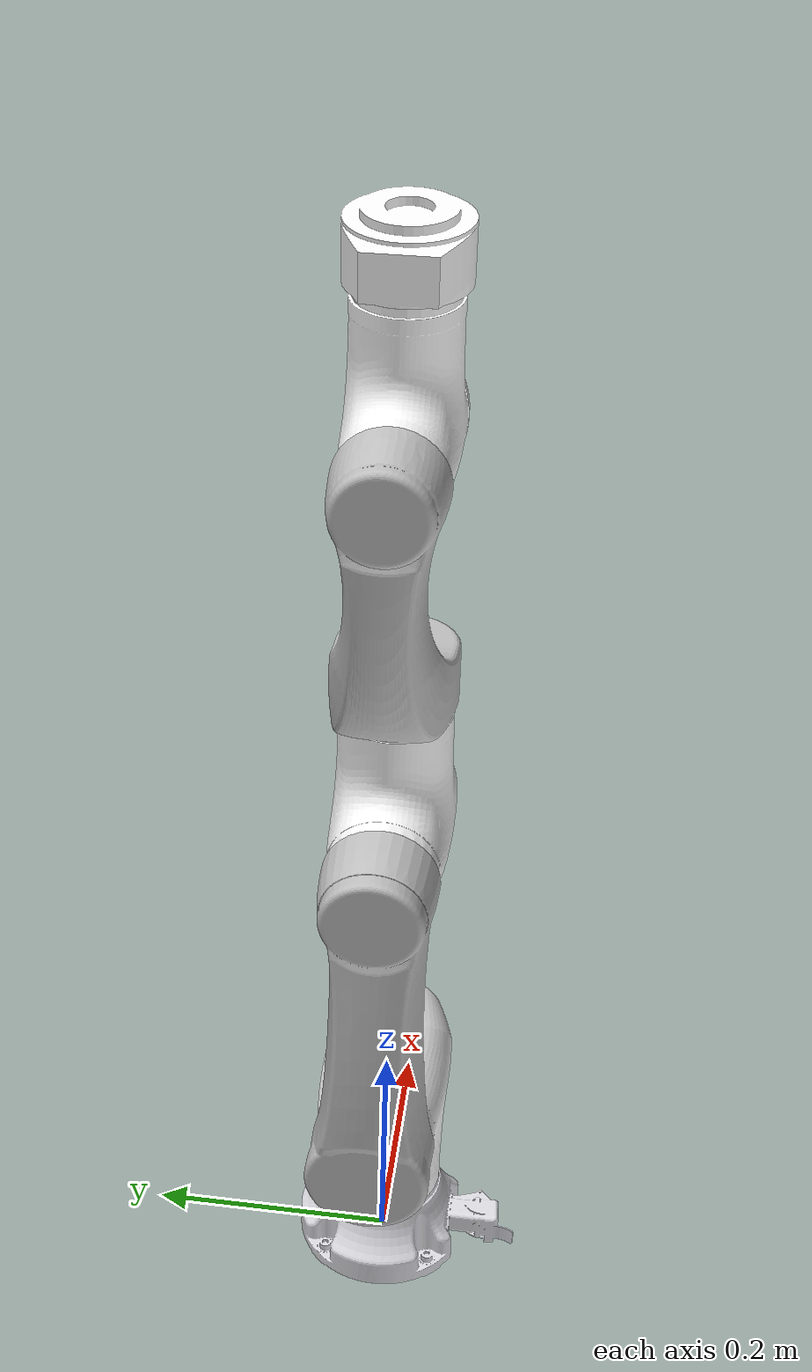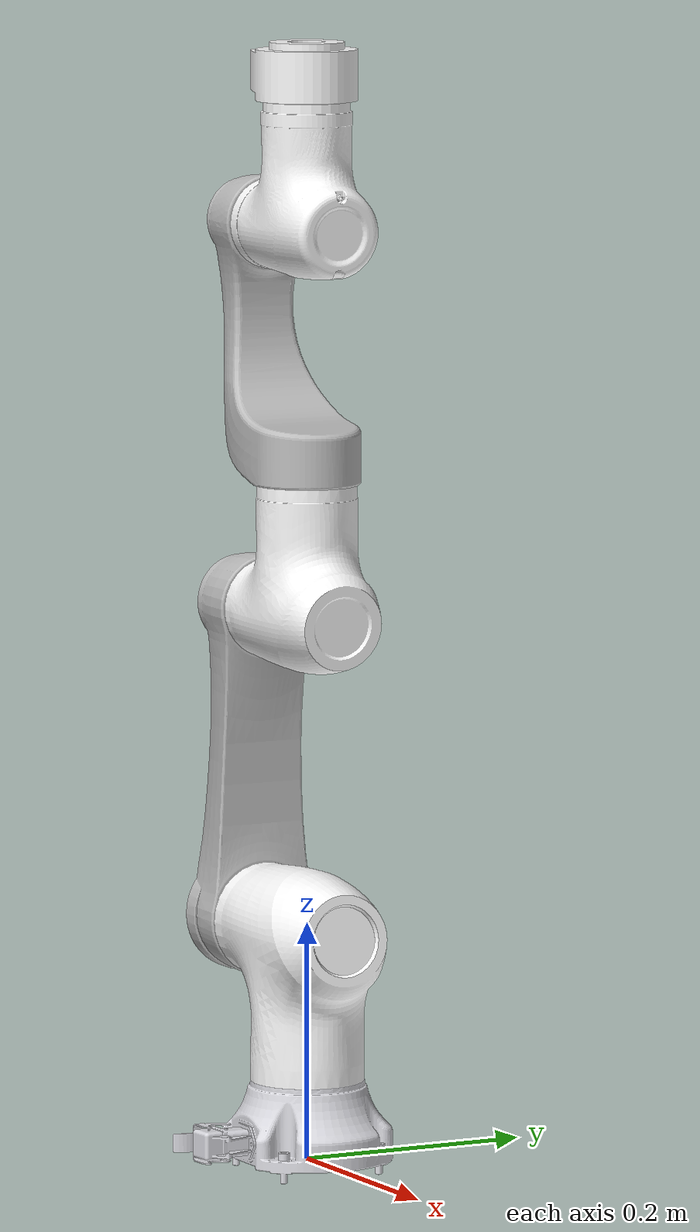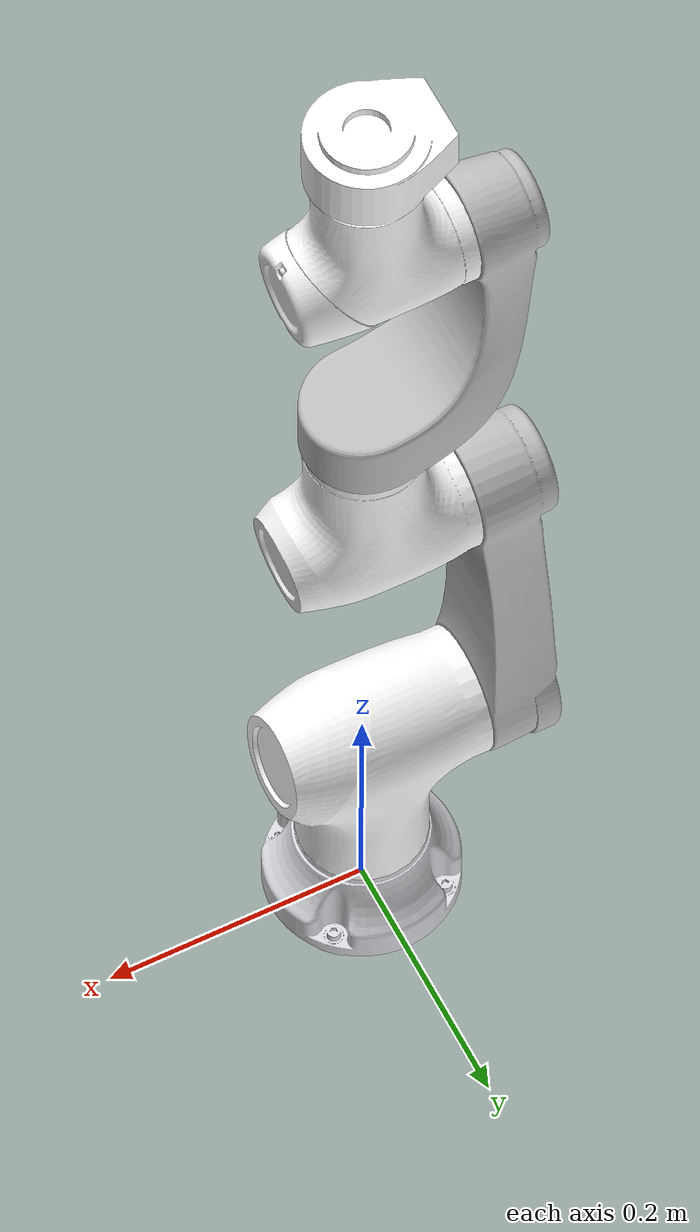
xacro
<robot
  name="elfin3" xmlns:xacro="http://www.ros.org/wiki/xacro">

  <xacro:include filename="$(find elfin_description)/urdf/materials.xacro" />

  <xacro:include filename="$(find elfin_description)/urdf/elfin_robot.gazebo" />

  <xacro:include filename="$(find elfin_description)/urdf/elfin_transmission.xacro" />

  <xacro:property name="PI" value="3.1415926535897931"/>

  <xacro:property name="density" value="3.09"/>

  <link name="world"/>

  <joint name="world_base" type="fixed">
    <origin
      xyz="0 0 0"
      rpy="0 0 -1.5708" />
    <parent
      link="world" />
    <child
      link="elfin_base_link" />
  </joint>

  <link name="elfin_base_link"/>

  <joint name="elfin_base_joint" type="fixed">
    <origin
      xyz="0 0 0"
      rpy="0 0 0" />
    <parent
      link="elfin_base_link" />
    <child
      link="elfin_base" />
  </joint>
 <link
    name="elfin_base">
    <inertial>
      <origin
        xyz="-3.29424604565274E-17 -1.34268095035506E-13 0.0281618442441758"
        rpy="0 0 0" />
      <mass
        value="0.957790548974336" />
      <inertia
        ixx="0.00150277910425554"
        ixy="-5.07476794726385E-15"
        ixz="6.74486887384113E-19"
        iyy="0.00150277910426632"
        iyz="-6.77700047631768E-15"
        izz="0.00236857924691092" />
    </inertial>
    <visual>
      <origin
        xyz="0 0 0"
        rpy="0 0 0" />
      <geometry>
        <mesh
          filename="package://elfin_description/meshes/elfin3/elfin_base.STL" />
      </geometry>
      <material
        name="">
        <color
          rgba="0.866666666666667 0.866666666666667 0.890196078431372 1" />
      </material>
    </visual>
    <collision>
      <origin
        xyz="0 0 0"
        rpy="0 0 0" />
      <geometry>
        <mesh
          filename="package://elfin_description/meshes/elfin3/elfin_base.STL" />
      </geometry>
    </collision>
  </link>
  <link
    name="elfin_link1">
    <inertial>
      <origin
        xyz="-9.91151833157951E-06 -0.00381802038981039 -0.0288793541460785"
        rpy="0 0 0" />
      <mass
        value="1.76831994028414" />
      <inertia
        ixx="0.00611258909183611"
        ixy="-9.83139510435094E-07"
        ixz="-4.14810998305304E-07"
        iyy="0.00490858433987136"
        iyz="0.000238616259770754"
        izz="0.00347391582535924" />
    </inertial>
    <visual>
      <origin
        xyz="0 0 0"
        rpy="0 0 0" />
      <geometry>
        <mesh
          filename="package://elfin_description/meshes/elfin3/elfin_link1.STL" />
      </geometry>
      <material
        name="">
        <color
          rgba="1 1 1 1" />
      </material>
    </visual>
    <collision>
      <origin
        xyz="0 0 0"
        rpy="0 0 0" />
      <geometry>
        <mesh
          filename="package://elfin_description/meshes/elfin3/elfin_link1.STL" />
      </geometry>
    </collision>
  </link>
  <joint
    name="elfin_joint1"
    type="revolute">
    <origin
      xyz="0 0 0.1925"
      rpy="0 0 0" />
    <parent
      link="elfin_base" />
    <child
      link="elfin_link1" />
    <axis
      xyz="0 0 1" />
    <limit
      lower="-3.14"
      upper="3.14"
      effort="104"
      velocity="1.57" />
  </joint>
  <link
    name="elfin_link2">
    <inertial>
      <origin
        xyz="-1.09591115591905E-05 0.119133426891285 0.104133324863746"
        rpy="0 0 0" />
      <mass
        value="1.41431338277405" />
      <inertia
        ixx="0.015779563515351"
        ixy="2.57229005873321E-06"
        ixz="-1.33122516224454E-07"
        iyy="0.00107744893104323"
        iyz="0.000788193806414118"
        izz="0.016037242338571" />
    </inertial>
    <visual>
      <origin
        xyz="0 0 0"
        rpy="0 0 0" />
      <geometry>
        <mesh
          filename="package://elfin_description/meshes/elfin3/elfin_link2.STL" />
      </geometry>
      <material
        name="">
        <color
          rgba="0.752941176470588 0.752941176470588 0.752941176470588 1" />
      </material>
    </visual>
    <collision>
      <origin
        xyz="0 0 0"
        rpy="0 0 0" />
      <geometry>
        <mesh
          filename="package://elfin_description/meshes/elfin3/elfin_link2.STL" />
      </geometry>
    </collision>
  </link>
  <joint
    name="elfin_joint2"
    type="revolute">
    <origin
      xyz="0 0 0"
      rpy="1.5708 0 0" />
    <parent
      link="elfin_link1" />
    <child
      link="elfin_link2" />
    <axis
      xyz="0 0 1" />
    <limit
      lower="-2.35"
      upper="2.35"
      effort="104"
      velocity="1.27" />
  </joint>
  <link
    name="elfin_link3">
    <inertial>
      <origin
        xyz="0.0250568861242891 6.90447572674757E-06 -0.00212484357202786"
        rpy="0 0 0" />
      <mass
        value="1.24814802120785" />
      <inertia
        ixx="0.00198810458497945"
        ixy="-2.27641402661824E-07"
        ixz="-8.7904200299055E-05"
        iyy="0.00344858240749365"
        iyz="-4.73997143171874E-07"
        izz="0.00270707588537784" />
    </inertial>
    <visual>
      <origin
        xyz="0 0 0"
        rpy="0 0 0" />
      <geometry>
        <mesh
          filename="package://elfin_description/meshes/elfin3/elfin_link3.STL" />
      </geometry>
      <material
        name="">
        <color
          rgba="1 1 1 1" />
      </material>
    </visual>
    <collision>
      <origin
        xyz="0 0 0"
        rpy="0 0 0" />
      <geometry>
        <mesh
          filename="package://elfin_description/meshes/elfin3/elfin_link3.STL" />
      </geometry>
    </collision>
  </link>
  <joint
    name="elfin_joint3"
    type="revolute">
    <origin
      xyz="0 0.266 0"
      rpy="3.1416 0 1.5708" />
    <parent
      link="elfin_link2" />
    <child
      link="elfin_link3" />
    <axis
      xyz="0 0 1" />
    <limit
      lower="-2.61"
      upper="2.61"
      effort="69"
      velocity="1.57" />
  </joint>
  <link
    name="elfin_link4">
    <inertial>
      <origin
        xyz="1.72360446946572E-06 -0.0572841318243815 0.203781479974732"
        rpy="0 0 0" />
      <mass
        value="1.11383740307423" />
      <inertia
        ixx="0.00840848075882267"
        ixy="1.16819985276106E-10"
        ixz="3.20661375501498E-08"
        iyy="0.0068932070989986"
        iyz="0.00249453758997878"
        izz="0.00249504881189781" />
    </inertial>
    <visual>
      <origin
        xyz="0 0 0"
        rpy="0 0 0" />
      <geometry>
        <mesh
          filename="package://elfin_description/meshes/elfin3/elfin_link4.STL" />
      </geometry>
      <material
        name="">
        <color
          rgba="0.752941176470588 0.752941176470588 0.752941176470588 1" />
      </material>
    </visual>
    <collision>
      <origin
        xyz="0 0 0"
        rpy="0 0 0" />
      <geometry>
        <mesh
          filename="package://elfin_description/meshes/elfin3/elfin_link4.STL" />
      </geometry>
    </collision>
  </link>
  <joint
    name="elfin_joint4"
    type="revolute">
    <origin
      xyz="0 0 0"
      rpy="1.5708 0 1.5708" />
    <parent
      link="elfin_link3" />
    <child
      link="elfin_link4" />
    <axis
      xyz="0 0 1" />
    <limit
      lower="-3.14"
      upper="3.14"
      effort="69"
      velocity="1.57" />
  </joint>
  <link
    name="elfin_link5">
    <inertial>
      <origin
        xyz="3.18971281487254E-07 -0.0247904768102997 -0.00288553868007254"
        rpy="0 0 0" />
      <mass
        value="0.932428626153683" />
      <inertia
        ixx="0.00225363150047226"
        ixy="1.57057111903631E-08"
        ixz="6.68352833152811E-08"
        iyy="0.00123622421076959"
        iyz="7.71608214306329E-05"
        izz="0.00173913787162088" />
    </inertial>
    <visual>
      <origin
        xyz="0 0 0"
        rpy="0 0 0" />
      <geometry>
        <mesh
          filename="package://elfin_description/meshes/elfin3/elfin_link5.STL" />
      </geometry>
      <material
        name="">
        <color
          rgba="1 1 1 1" />
      </material>
    </visual>
    <collision>
      <origin
        xyz="0 0 0"
        rpy="0 0 0" />
      <geometry>
        <mesh
          filename="package://elfin_description/meshes/elfin3/elfin_link5.STL" />
      </geometry>
    </collision>
  </link>
  <joint
    name="elfin_joint5"
    type="revolute">
    <origin
      xyz="0 0 0.324"
      rpy="-1.5708 0 0" />
    <parent
      link="elfin_link4" />
    <child
      link="elfin_link5" />
    <axis
      xyz="0 0 1" />
    <limit
      lower="-2.56"
      upper="2.56"
      effort="34"
      velocity="1.57" />
  </joint>
  <link
    name="elfin_link6">
    <inertial>
      <origin
        xyz="1.4323826069585E-07 -0.00502093248893552 0.129189718099031"
        rpy="0 0 0" />
      <mass
        value="0.288820351990399" />
      <inertia
        ixx="0.00021791903145322"
        ixy="9.9472362909318E-10"
        ixz="3.50877282174168E-11"
        iyy="0.000175921298751184"
        iyz="1.17498406450176E-06"
        izz="0.000299410517394812" />
    </inertial>
    <visual>
      <origin
        xyz="0 0 0"
        rpy="0 0 0" />
      <geometry>
        <mesh
          filename="package://elfin_description/meshes/elfin3/elfin_link6.STL" />
      </geometry>
      <material
        name="">
        <color
          rgba="1 1 1 1" />
      </material>
    </visual>
    <collision>
      <origin
        xyz="0 0 0"
        rpy="0 0 0" />
      <geometry>
        <mesh
          filename="package://elfin_description/meshes/elfin3/elfin_link6.STL" />
      </geometry>
    </collision>
  </link>
  <joint
    name="elfin_joint6"
    type="revolute">
    <origin
      xyz="0 0 0"
      rpy="1.5708 0 0" />
    <parent
      link="elfin_link5" />
    <child
      link="elfin_link6" />
    <axis
      xyz="0 0 1" />
    <limit
      lower="-3.14"
      upper="3.14"
      effort="34"
      velocity="1.57" />
  </joint>
  <link
    name="elfin_end_link">
  </link>
  <joint
    name="elfin_end_joint"
    type="fixed">
    <origin
      xyz="0 0 0.155"
      rpy="0 0 0" />
    <parent
      link="elfin_link6" />
    <child
      link="elfin_end_link" />
    <axis
      xyz="0 0 0" />
  </joint>

  <link name="elfin_dummy_gripper"/>

  <joint name="elfin_dummy_joint" type="fixed">
    <origin
      xyz="0 -0.111 0"
      rpy="${PI/2} ${-PI/2} 0" />
    <parent
      link="elfin_link6" />
    <child
      link="elfin_dummy_gripper" />
  </joint>

</robot>
